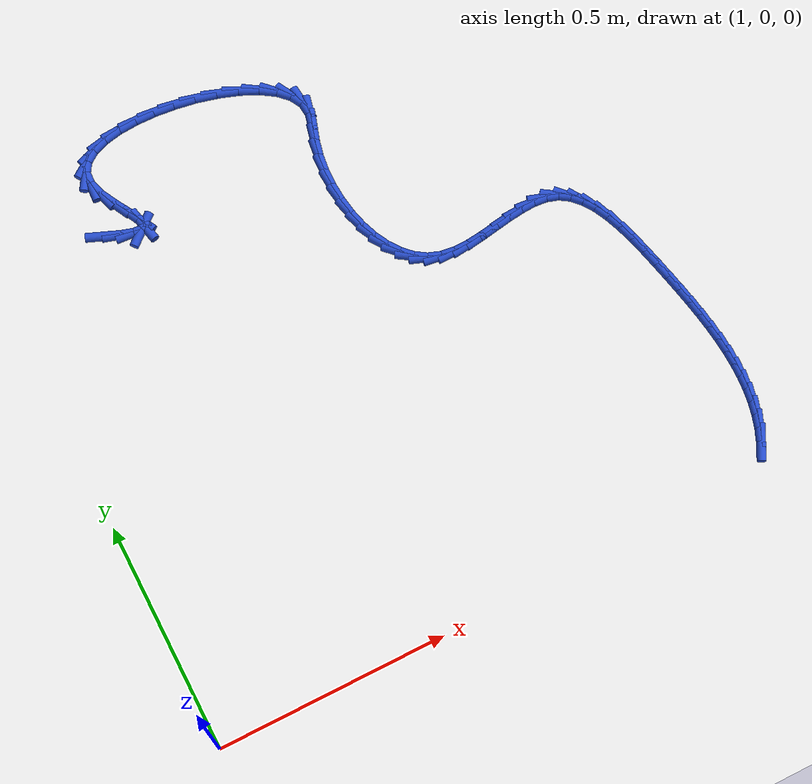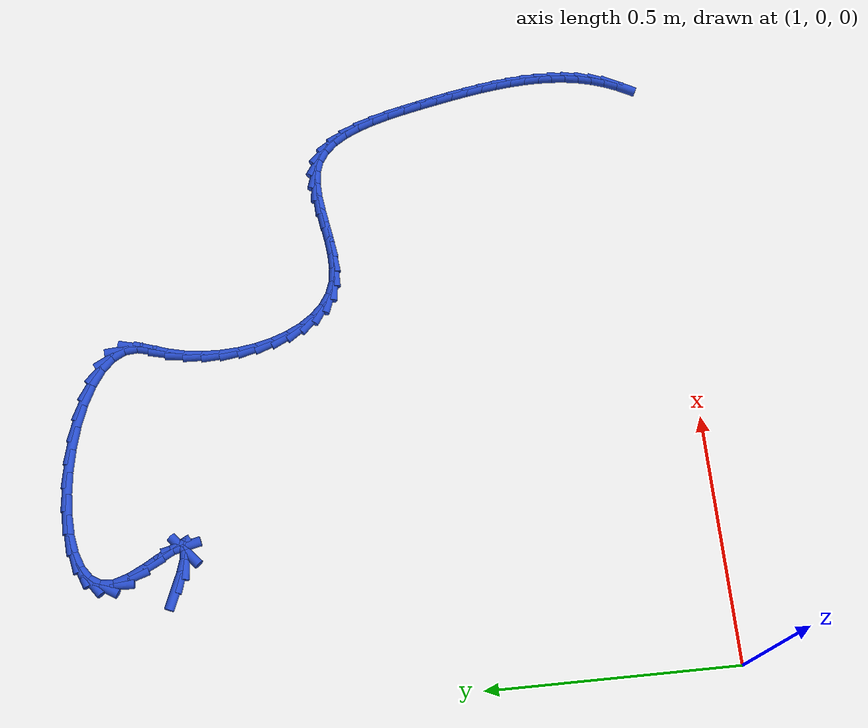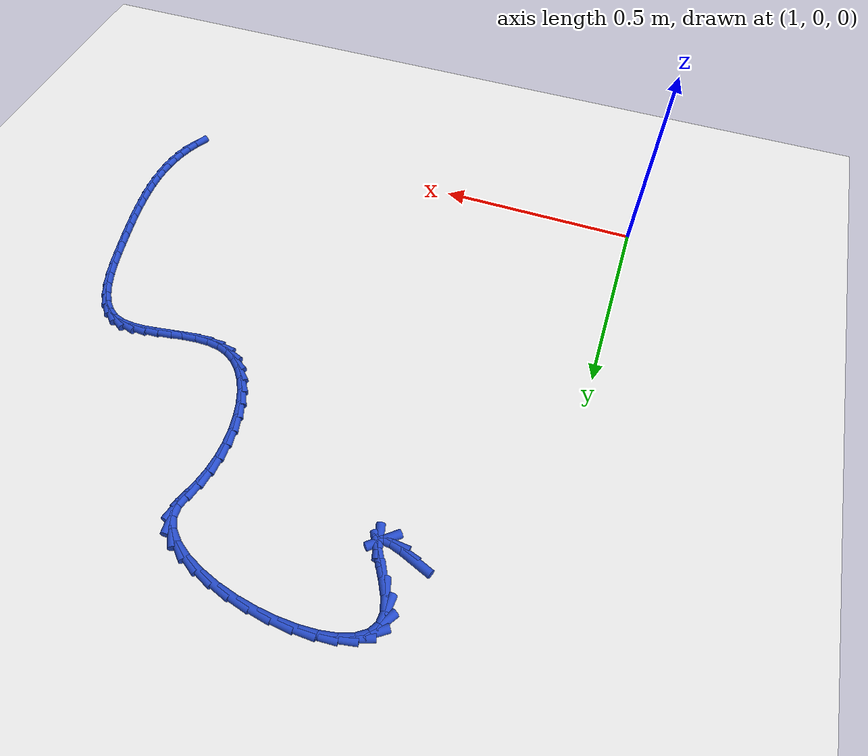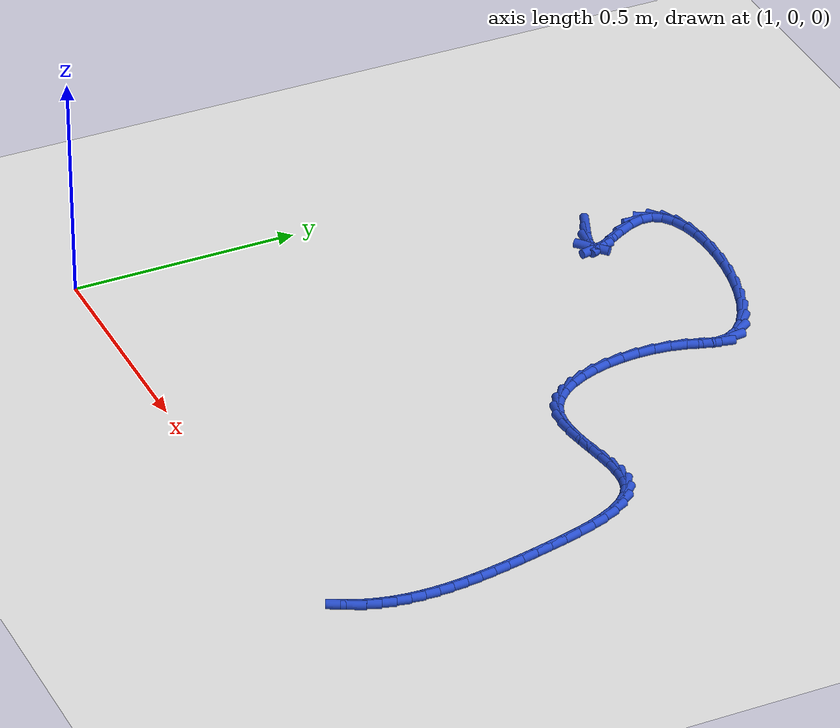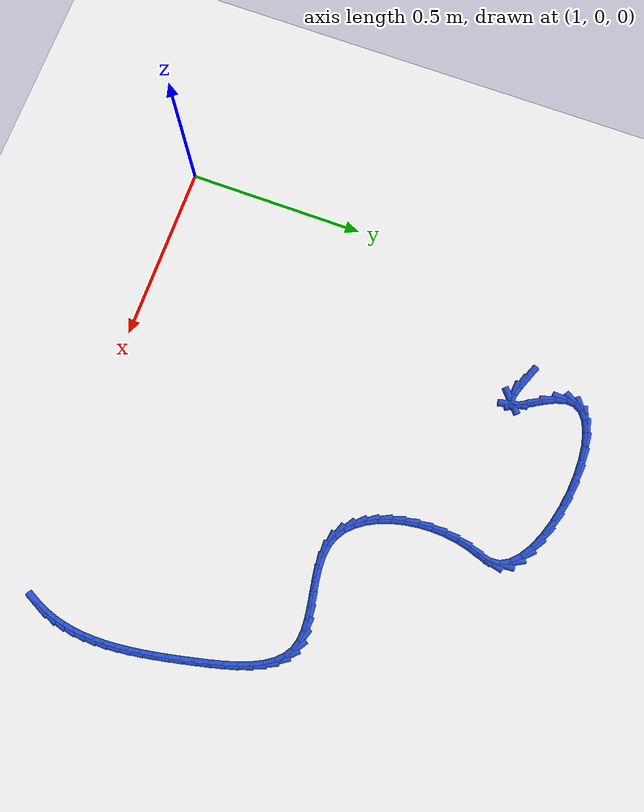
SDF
<sdf version="1.6">
 <world name="default">
  <model name="ground_plane">
   <static>1</static>
   <link name="link">
    <collision name="collision">
     <geometry><plane><normal>0 0 1</normal><size>100 100</size></plane></geometry>
     <surface><friction><ode><mu>100</mu><mu2>50</mu2></ode></friction></surface>
    </collision>
    <visual name="visual">
     <cast_shadows>0</cast_shadows>
     <geometry><plane><normal>0 0 1</normal><size>100 100</size></plane></geometry>
     <material>
      <script><uri>file://media/materials/scripts/gazebo.material</uri><name>Gazebo/WhiteGlow</name></script>
     </material>
    </visual>
   </link>
  </model>
  <model name="line">
   <link name="link_72">
    <pose>1.2478305650661614 1.0745295730575588 0.01 0 1.57 -0.37812944372000823</pose>
    <collision name="collision">
     <geometry><cylinder><radius>0.01</radius><length>0.08</length></cylinder></geometry>
    </collision>
    <visual name="visual">
     <material>
      <script><name>Gazebo/Blue</name><uri>file://media/materials/scripts/gazebo.material</uri></script>
     </material>
     <geometry><cylinder><radius>0.01</radius><length>0.08</length></cylinder></geometry>
    </visual>
   </link>
   <link name="link_73">
    <pose>1.2803647841303274 1.0616055051318056 0.01 0 1.57 -0.2929380937873325</pose>
    <collision name="collision">
     <geometry><cylinder><radius>0.01</radius><length>0.08</length></cylinder></geometry>
    </collision>
    <visual name="visual">
     <material>
      <script><name>Gazebo/Blue</name><uri>file://media/materials/scripts/gazebo.material</uri></script>
     </material>
     <geometry><cylinder><radius>0.01</radius><length>0.08</length></cylinder></geometry>
    </visual>
   </link>
   <link name="link_74">
    <pose>1.3062742661413442 1.0537908080284506 0.01 0 1.57 -0.06957884811726305</pose>
    <collision name="collision">
     <geometry><cylinder><radius>0.01</radius><length>0.08</length></cylinder></geometry>
    </collision>
    <visual name="visual">
     <material>
      <script><name>Gazebo/Blue</name><uri>file://media/materials/scripts/gazebo.material</uri></script>
     </material>
     <geometry><cylinder><radius>0.01</radius><length>0.08</length></cylinder></geometry>
    </visual>
   </link>
   <link name="link_75">
    <pose>1.323922116393836 1.0525609055540477 0.01 0 1.57 0.7224478031468782</pose>
    <collision name="collision">
     <geometry><cylinder><radius>0.01</radius><length>0.08</length></cylinder></geometry>
    </collision>
    <visual name="visual">
     <material>
      <script><name>Gazebo/Blue</name><uri>file://media/materials/scripts/gazebo.material</uri></script>
     </material>
     <geometry><cylinder><radius>0.01</radius><length>0.08</length></cylinder></geometry>
    </visual>
   </link>
   <link name="link_76">
    <pose>1.3316714401824277 1.0593912215151517 0.01 0 1.57 -1.3496120685410957</pose>
    <collision name="collision">
     <geometry><cylinder><radius>0.01</radius><length>0.08</length></cylinder></geometry>
    </collision>
    <visual name="visual">
     <material>
      <script><name>Gazebo/Blue</name><uri>file://media/materials/scripts/gazebo.material</uri></script>
     </material>
     <geometry><cylinder><radius>0.01</radius><length>0.08</length></cylinder></geometry>
    </visual>
   </link>
   <link name="link_77">
    <pose>1.3280105312774348 1.0756718242429102 0.01 0 1.57 -1.0800611763445116</pose>
    <collision name="collision">
     <geometry><cylinder><radius>0.01</radius><length>0.08</length></cylinder></geometry>
    </collision>
    <visual name="visual">
     <material>
      <script><name>Gazebo/Blue</name><uri>file://media/materials/scripts/gazebo.material</uri></script>
     </material>
     <geometry><cylinder><radius>0.01</radius><length>0.08</length></cylinder></geometry>
    </visual>
   </link>
   <link name="link_78">
    <pose>1.3147174181506907 1.100549789110419 0.01 0 1.57 -1.043010074607003</pose>
    <collision name="collision">
     <geometry><cylinder><radius>0.01</radius><length>0.08</length></cylinder></geometry>
    </collision>
    <visual name="visual">
     <material>
      <script><name>Gazebo/Blue</name><uri>file://media/materials/scripts/gazebo.material</uri></script>
     </material>
     <geometry><cylinder><radius>0.01</radius><length>0.08</length></cylinder></geometry>
    </visual>
   </link>
   <link name="link_79">
    <pose>1.2971054329115812 1.1307617657625344 0.01 0 1.57 -1.0982033194459906</pose>
    <collision name="collision">
     <geometry><cylinder><radius>0.01</radius><length>0.08</length></cylinder></geometry>
    </collision>
    <visual name="visual">
     <material>
      <script><name>Gazebo/Blue</name><uri>file://media/materials/scripts/gazebo.material</uri></script>
     </material>
     <geometry><cylinder><radius>0.01</radius><length>0.08</length></cylinder></geometry>
    </visual>
   </link>
   <link name="link_80">
    <pose>1.2806622897430027 1.1629255073985398 0.01 0 1.57 -1.262512435571746</pose>
    <collision name="collision">
     <geometry><cylinder><radius>0.01</radius><length>0.08</length></cylinder></geometry>
    </collision>
    <visual name="visual">
     <material>
      <script><name>Gazebo/Blue</name><uri>file://media/materials/scripts/gazebo.material</uri></script>
     </material>
     <geometry><cylinder><radius>0.01</radius><length>0.08</length></cylinder></geometry>
    </visual>
   </link>
   <link name="link_81">
    <pose>1.2708757028278495 1.1936587672177172 0.01 0 1.57 1.5128051599179193</pose>
    <collision name="collision">
     <geometry><cylinder><radius>0.01</radius><length>0.08</length></cylinder></geometry>
    </collision>
    <visual name="visual">
     <material>
      <script><name>Gazebo/Blue</name><uri>file://media/materials/scripts/gazebo.material</uri></script>
     </material>
     <geometry><cylinder><radius>0.01</radius><length>0.08</length></cylinder></geometry>
    </visual>
   </link>
   <link name="link_82">
    <pose>1.2724048519938926 1.2199978581546755 0.01 0 1.57 1.0283300394341726</pose>
    <collision name="collision">
     <geometry><cylinder><radius>0.01</radius><length>0.08</length></cylinder></geometry>
    </collision>
    <visual name="visual">
     <material>
      <script><name>Gazebo/Blue</name><uri>file://media/materials/scripts/gazebo.material</uri></script>
     </material>
     <geometry><cylinder><radius>0.01</radius><length>0.08</length></cylinder></geometry>
    </visual>
   </link>
   <link name="link_83">
    <pose>1.2852616609815208 1.2413267981798968 0.01 0 1.57 0.6317180641579971</pose>
    <collision name="collision">
     <geometry><cylinder><radius>0.01</radius><length>0.08</length></cylinder></geometry>
    </collision>
    <visual name="visual">
     <material>
      <script><name>Gazebo/Blue</name><uri>file://media/materials/scripts/gazebo.material</uri></script>
     </material>
     <geometry><cylinder><radius>0.01</radius><length>0.08</length></cylinder></geometry>
    </visual>
   </link>
   <link name="link_84">
    <pose>1.3078388116097375 1.2578476153630838 0.01 0 1.57 0.37035723255610814</pose>
    <collision name="collision">
     <geometry><cylinder><radius>0.01</radius><length>0.08</length></cylinder></geometry>
    </collision>
    <visual name="visual">
     <material>
      <script><name>Gazebo/Blue</name><uri>file://media/materials/scripts/gazebo.material</uri></script>
     </material>
     <geometry><cylinder><radius>0.01</radius><length>0.08</length></cylinder></geometry>
    </visual>
   </link>
   <link name="link_85">
    <pose>1.338527329039117 1.2697631746861422 0.01 0 1.57 0.19933346647590364</pose>
    <collision name="collision">
     <geometry><cylinder><radius>0.01</radius><length>0.08</length></cylinder></geometry>
    </collision>
    <visual name="visual">
     <material>
      <script><name>Gazebo/Blue</name><uri>file://media/materials/scripts/gazebo.material</uri></script>
     </material>
     <geometry><cylinder><radius>0.01</radius><length>0.08</length></cylinder></geometry>
    </visual>
   </link>
   <link name="link_86">
    <pose>1.3757182384302349 1.2772763411309775 0.01 0 1.57 0.07857595324308744</pose>
    <collision name="collision">
     <geometry><cylinder><radius>0.01</radius><length>0.08</length></cylinder></geometry>
    </collision>
    <visual name="visual">
     <material>
      <script><name>Gazebo/Blue</name><uri>file://media/materials/scripts/gazebo.material</uri></script>
     </material>
     <geometry><cylinder><radius>0.01</radius><length>0.08</length></cylinder></geometry>
    </visual>
   </link>
   <link name="link_87">
    <pose>1.4178025649436679 1.2805899796794966 0.01 0 1.57 -0.015053808781209092</pose>
    <collision name="collision">
     <geometry><cylinder><radius>0.01</radius><length>0.08</length></cylinder></geometry>
    </collision>
    <visual name="visual">
     <material>
      <script><name>Gazebo/Blue</name><uri>file://media/materials/scripts/gazebo.material</uri></script>
     </material>
     <geometry><cylinder><radius>0.01</radius><length>0.08</length></cylinder></geometry>
    </visual>
   </link>
   <link name="link_88">
    <pose>1.46317133373999 1.2799069553136047 0.01 0 1.57 -0.09487626695532826</pose>
    <collision name="collision">
     <geometry><cylinder><radius>0.01</radius><length>0.08</length></cylinder></geometry>
    </collision>
    <visual name="visual">
     <material>
      <script><name>Gazebo/Blue</name><uri>file://media/materials/scripts/gazebo.material</uri></script>
     </material>
     <geometry><cylinder><radius>0.01</radius><length>0.08</length></cylinder></geometry>
    </visual>
   </link>
   <link name="link_89">
    <pose>1.510215569979777 1.2754301330152082 0.01 0 1.57 -0.16960568076453664</pose>
    <collision name="collision">
     <geometry><cylinder><radius>0.01</radius><length>0.08</length></cylinder></geometry>
    </collision>
    <visual name="visual">
     <material>
      <script><name>Gazebo/Blue</name><uri>file://media/materials/scripts/gazebo.material</uri></script>
     </material>
     <geometry><cylinder><radius>0.01</radius><length>0.08</length></cylinder></geometry>
    </visual>
   </link>
   <link name="link_90">
    <pose>1.5573262988236043 1.2673623777662129 0.01 0 1.57 -0.24629517415803584</pose>
    <collision name="collision">
     <geometry><cylinder><radius>0.01</radius><length>0.08</length></cylinder></geometry>
    </collision>
    <visual name="visual">
     <material>
      <script><name>Gazebo/Blue</name><uri>file://media/materials/scripts/gazebo.material</uri></script>
     </material>
     <geometry><cylinder><radius>0.01</radius><length>0.08</length></cylinder></geometry>
    </visual>
   </link>
   <link name="link_91">
    <pose>1.6028945454320482 1.2559065545485242 0.01 0 1.57 -0.33236594444159884</pose>
    <collision name="collision">
     <geometry><cylinder><radius>0.01</radius><length>0.08</length></cylinder></geometry>
    </collision>
    <visual name="visual">
     <material>
      <script><name>Gazebo/Blue</name><uri>file://media/materials/scripts/gazebo.material</uri></script>
     </material>
     <geometry><cylinder><radius>0.01</radius><length>0.08</length></cylinder></geometry>
    </visual>
   </link>
   <link name="link_92">
    <pose>1.6453113349656823 1.241265528344049 0.01 0 1.57 -0.43772560461045495</pose>
    <collision name="collision">
     <geometry><cylinder><radius>0.01</radius><length>0.08</length></cylinder></geometry>
    </collision>
    <visual name="visual">
     <material>
      <script><name>Gazebo/Blue</name><uri>file://media/materials/scripts/gazebo.material</uri></script>
     </material>
     <geometry><cylinder><radius>0.01</radius><length>0.08</length></cylinder></geometry>
    </visual>
   </link>
   <link name="link_93">
    <pose>1.6829676925850825 1.2236421641346924 0.01 0 1.57 -0.5778639055378121</pose>
    <collision name="collision">
     <geometry><cylinder><radius>0.01</radius><length>0.08</length></cylinder></geometry>
    </collision>
    <visual name="visual">
     <material>
      <script><name>Gazebo/Blue</name><uri>file://media/materials/scripts/gazebo.material</uri></script>
     </material>
     <geometry><cylinder><radius>0.01</radius><length>0.08</length></cylinder></geometry>
    </visual>
   </link>
   <link name="link_94">
    <pose>1.7142546434508255 1.2032393269023614 0.01 0 1.57 -0.7782879328952622</pose>
    <collision name="collision">
     <geometry><cylinder><radius>0.01</radius><length>0.08</length></cylinder></geometry>
    </collision>
    <visual name="visual">
     <material>
      <script><name>Gazebo/Blue</name><uri>file://media/materials/scripts/gazebo.material</uri></script>
     </material>
     <geometry><cylinder><radius>0.01</radius><length>0.08</length></cylinder></geometry>
    </visual>
   </link>
   <link name="link_95">
    <pose>1.7375632127234857 1.1802598816289602 0.01 0 1.57 -1.0747323956902781</pose>
    <collision name="collision">
     <geometry><cylinder><radius>0.01</radius><length>0.08</length></cylinder></geometry>
    </collision>
    <visual name="visual">
     <material>
      <script><name>Gazebo/Blue</name><uri>file://media/materials/scripts/gazebo.material</uri></script>
     </material>
     <geometry><cylinder><radius>0.01</radius><length>0.08</length></cylinder></geometry>
    </visual>
   </link>
   <link name="link_96">
    <pose>1.7512844255636382 1.1549066932963963 0.01 0 1.57 -1.477620112990437</pose>
    <collision name="collision">
     <geometry><cylinder><radius>0.01</radius><length>0.08</length></cylinder></geometry>
    </collision>
    <visual name="visual">
     <material>
      <script><name>Gazebo/Blue</name><uri>file://media/materials/scripts/gazebo.material</uri></script>
     </material>
     <geometry><cylinder><radius>0.01</radius><length>0.08</length></cylinder></geometry>
    </visual>
   </link>
   <link name="link_97">
    <pose>1.753856666814134 1.1273804295298062 0.01 0 1.57 1.337148707363873</pose>
    <collision name="collision">
     <geometry><cylinder><radius>0.01</radius><length>0.08</length></cylinder></geometry>
    </collision>
    <visual name="visual">
     <material>
      <script><name>Gazebo/Blue</name><uri>file://media/materials/scripts/gazebo.material</uri></script>
     </material>
     <geometry><cylinder><radius>0.01</radius><length>0.08</length></cylinder></geometry>
    </visual>
   </link>
   <link name="link_98">
    <pose>1.7468021003389258 1.097738679234604 0.01 0 1.57 1.2605910597459384</pose>
    <collision name="collision">
     <geometry><cylinder><radius>0.01</radius><length>0.08</length></cylinder></geometry>
    </collision>
    <visual name="visual">
     <material>
      <script><name>Gazebo/Blue</name><uri>file://media/materials/scripts/gazebo.material</uri></script>
     </material>
     <geometry><cylinder><radius>0.01</radius><length>0.08</length></cylinder></geometry>
    </visual>
   </link>
   <link name="link_99">
    <pose>1.7365674163078704 1.0658105521818677 0.01 0 1.57 1.346394562430708</pose>
    <collision name="collision">
     <geometry><cylinder><radius>0.01</radius><length>0.08</length></cylinder></geometry>
    </collision>
    <visual name="visual">
     <material>
      <script><name>Gazebo/Blue</name><uri>file://media/materials/scripts/gazebo.material</uri></script>
     </material>
     <geometry><cylinder><radius>0.01</radius><length>0.08</length></cylinder></geometry>
    </visual>
   </link>
   <link name="link_100">
    <pose>1.7287553807042175 1.0315841490173723 0.01 0 1.57 1.4488682140867206</pose>
    <collision name="collision">
     <geometry><cylinder><radius>0.01</radius><length>0.08</length></cylinder></geometry>
    </collision>
    <visual name="visual">
     <material>
      <script><name>Gazebo/Blue</name><uri>file://media/materials/scripts/gazebo.material</uri></script>
     </material>
     <geometry><cylinder><radius>0.01</radius><length>0.08</length></cylinder></geometry>
    </visual>
   </link>
   <link name="link_101">
    <pose>1.7243572549149024 0.9956916120126073 0.01 0 1.57 1.5428795222623892</pose>
    <collision name="collision">
     <geometry><cylinder><radius>0.01</radius><length>0.08</length></cylinder></geometry>
    </collision>
    <visual name="visual">
     <material>
      <script><name>Gazebo/Blue</name><uri>file://media/materials/scripts/gazebo.material</uri></script>
     </material>
     <geometry><cylinder><radius>0.01</radius><length>0.08</length></cylinder></geometry>
    </visual>
   </link>
   <link name="link_102">
    <pose>1.723330149400294 0.9589095127093924 0.01 0 1.57 -1.5085102936279629</pose>
    <collision name="collision">
     <geometry><cylinder><radius>0.01</radius><length>0.08</length></cylinder></geometry>
    </collision>
    <visual name="visual">
     <material>
      <script><name>Gazebo/Blue</name><uri>file://media/materials/scripts/gazebo.material</uri></script>
     </material>
     <geometry><cylinder><radius>0.01</radius><length>0.08</length></cylinder></geometry>
    </visual>
   </link>
   <link name="link_103">
    <pose>1.7256311746207635 0.9220144226495491 0.01 0 1.57 -1.4178183988220703</pose>
    <collision name="collision">
     <geometry><cylinder><radius>0.01</radius><length>0.08</length></cylinder></geometry>
    </collision>
    <visual name="visual">
     <material>
      <script><name>Gazebo/Blue</name><uri>file://media/materials/scripts/gazebo.material</uri></script>
     </material>
     <geometry><cylinder><radius>0.01</radius><length>0.08</length></cylinder></geometry>
    </visual>
   </link>
   <link name="link_104">
    <pose>1.7312174410366807 0.8857829133748966 0.01 0 1.57 -1.322282973082021</pose>
    <collision name="collision">
     <geometry><cylinder><radius>0.01</radius><length>0.08</length></cylinder></geometry>
    </collision>
    <visual name="visual">
     <material>
      <script><name>Gazebo/Blue</name><uri>file://media/materials/scripts/gazebo.material</uri></script>
     </material>
     <geometry><cylinder><radius>0.01</radius><length>0.08</length></cylinder></geometry>
    </visual>
   </link>
   <link name="link_105">
    <pose>1.7400460591084168 0.8509915564272569 0.01 0 1.57 -1.2170790419069604</pose>
    <collision name="collision">
     <geometry><cylinder><radius>0.01</radius><length>0.08</length></cylinder></geometry>
    </collision>
    <visual name="visual">
     <material>
      <script><name>Gazebo/Blue</name><uri>file://media/materials/scripts/gazebo.material</uri></script>
     </material>
     <geometry><cylinder><radius>0.01</radius><length>0.08</length></cylinder></geometry>
    </visual>
   </link>
   <link name="link_106">
    <pose>1.7520741392963413 0.81841692334845 0.01 0 1.57 -1.0965506454835985</pose>
    <collision name="collision">
     <geometry><cylinder><radius>0.01</radius><length>0.08</length></cylinder></geometry>
    </collision>
    <visual name="visual">
     <material>
      <script><name>Gazebo/Blue</name><uri>file://media/materials/scripts/gazebo.material</uri></script>
     </material>
     <geometry><cylinder><radius>0.01</radius><length>0.08</length></cylinder></geometry>
    </visual>
   </link>
   <link name="link_107">
    <pose>1.7672587920608254 0.7888355856802967 0.01 0 1.57 -0.9541070856824572</pose>
    <collision name="collision">
     <geometry><cylinder><radius>0.01</radius><length>0.08</length></cylinder></geometry>
    </collision>
    <visual name="visual">
     <material>
      <script><name>Gazebo/Blue</name><uri>file://media/materials/scripts/gazebo.material</uri></script>
     </material>
     <geometry><cylinder><radius>0.01</radius><length>0.08</length></cylinder></geometry>
    </visual>
   </link>
   <link name="link_108">
    <pose>1.7855571278622384 0.763024114964617 0.01 0 1.57 -0.7829565328655871</pose>
    <collision name="collision">
     <geometry><cylinder><radius>0.01</radius><length>0.08</length></cylinder></geometry>
    </collision>
    <visual name="visual">
     <material>
      <script><name>Gazebo/Blue</name><uri>file://media/materials/scripts/gazebo.material</uri></script>
     </material>
     <geometry><cylinder><radius>0.01</radius><length>0.08</length></cylinder></geometry>
    </visual>
   </link>
   <link name="link_109">
    <pose>1.8069262571609521 0.7417590827432314 0.01 0 1.57 -0.5787904099143435</pose>
    <collision name="collision">
     <geometry><cylinder><radius>0.01</radius><length>0.08</length></cylinder></geometry>
    </collision>
    <visual name="visual">
     <material>
      <script><name>Gazebo/Blue</name><uri>file://media/materials/scripts/gazebo.material</uri></script>
     </material>
     <geometry><cylinder><radius>0.01</radius><length>0.08</length></cylinder></geometry>
    </visual>
   </link>
   <link name="link_110">
    <pose>1.8313232904173353 0.7258170605579615 0.01 0 1.57 -0.345727028559131</pose>
    <collision name="collision">
     <geometry><cylinder><radius>0.01</radius><length>0.08</length></cylinder></geometry>
    </collision>
    <visual name="visual">
     <material>
      <script><name>Gazebo/Blue</name><uri>file://media/materials/scripts/gazebo.material</uri></script>
     </material>
     <geometry><cylinder><radius>0.01</radius><length>0.08</length></cylinder></geometry>
    </visual>
   </link>
   <link name="link_111">
    <pose>1.8586997970088208 0.7159562159144177 0.01 0 1.57 -0.12910799916274707</pose>
    <collision name="collision">
     <geometry><cylinder><radius>0.01</radius><length>0.08</length></cylinder></geometry>
    </collision>
    <visual name="visual">
     <material>
      <script><name>Gazebo/Blue</name><uri>file://media/materials/scripts/gazebo.material</uri></script>
     </material>
     <geometry><cylinder><radius>0.01</radius><length>0.08</length></cylinder></geometry>
    </visual>
   </link>
   <link name="link_112">
    <pose>1.8887427043151102 0.7120557399587494 0.01 0 1.57 0.021622337586417427</pose>
    <collision name="collision">
     <geometry><cylinder><radius>0.01</radius><length>0.08</length></cylinder></geometry>
    </collision>
    <visual name="visual">
     <material>
      <script><name>Gazebo/Blue</name><uri>file://media/materials/scripts/gazebo.material</uri></script>
     </material>
     <geometry><cylinder><radius>0.01</radius><length>0.08</length></cylinder></geometry>
    </visual>
   </link>
   <link name="link_113">
    <pose>1.9207636109365127 0.7127482147314383 0.01 0 1.57 0.11437318859692377</pose>
    <collision name="collision">
     <geometry><cylinder><radius>0.01</radius><length>0.08</length></cylinder></geometry>
    </collision>
    <visual name="visual">
     <material>
      <script><name>Gazebo/Blue</name><uri>file://media/materials/scripts/gazebo.material</uri></script>
     </material>
     <geometry><cylinder><radius>0.01</radius><length>0.08</length></cylinder></geometry>
    </visual>
   </link>
   <link name="link_114">
    <pose>1.9540455862356183 0.7165714658634726 0.01 0 1.57 0.1609510490947272</pose>
    <collision name="collision">
     <geometry><cylinder><radius>0.01</radius><length>0.08</length></cylinder></geometry>
    </collision>
    <visual name="visual">
     <material>
      <script><name>Gazebo/Blue</name><uri>file://media/materials/scripts/gazebo.material</uri></script>
     </material>
     <geometry><cylinder><radius>0.01</radius><length>0.08</length></cylinder></geometry>
    </visual>
   </link>
   <link name="link_115">
    <pose>1.9878716995750219 0.7220633189858409 0.01 0 1.57 0.16773208538750367</pose>
    <collision name="collision">
     <geometry><cylinder><radius>0.01</radius><length>0.08</length></cylinder></geometry>
    </collision>
    <visual name="visual">
     <material>
      <script><name>Gazebo/Blue</name><uri>file://media/materials/scripts/gazebo.material</uri></script>
     </material>
     <geometry><cylinder><radius>0.01</radius><length>0.08</length></cylinder></geometry>
    </visual>
   </link>
   <link name="link_116">
    <pose>2.0215250203173136 0.7277615997295315 0.01 0 1.57 0.13477165311768877</pose>
    <collision name="collision">
     <geometry><cylinder><radius>0.01</radius><length>0.08</length></cylinder></geometry>
    </collision>
    <visual name="visual">
     <material>
      <script><name>Gazebo/Blue</name><uri>file://media/materials/scripts/gazebo.material</uri></script>
     </material>
     <geometry><cylinder><radius>0.01</radius><length>0.08</length></cylinder></geometry>
    </visual>
   </link>
   <link name="link_117">
    <pose>2.054288617825088 0.7322041337255325 0.01 0 1.57 0.05529601322150653</pose>
    <collision name="collision">
     <geometry><cylinder><radius>0.01</radius><length>0.08</length></cylinder></geometry>
    </collision>
    <visual name="visual">
     <material>
      <script><name>Gazebo/Blue</name><uri>file://media/materials/scripts/gazebo.material</uri></script>
     </material>
     <geometry><cylinder><radius>0.01</radius><length>0.08</length></cylinder></geometry>
    </visual>
   </link>
   <link name="link_118">
    <pose>2.085445561460935 0.7339287466048329 0.01 0 1.57 -0.08495618652632844</pose>
    <collision name="collision">
     <geometry><cylinder><radius>0.01</radius><length>0.08</length></cylinder></geometry>
    </collision>
    <visual name="visual">
     <material>
      <script><name>Gazebo/Blue</name><uri>file://media/materials/scripts/gazebo.material</uri></script>
     </material>
     <geometry><cylinder><radius>0.01</radius><length>0.08</length></cylinder></geometry>
    </visual>
   </link>
   <link name="link_119">
    <pose>2.1142789205874477 0.7314732639984203 0.01 0 1.57 -0.30401065619891227</pose>
    <collision name="collision">
     <geometry><cylinder><radius>0.01</radius><length>0.08</length></cylinder></geometry>
    </collision>
    <visual name="visual">
     <material>
      <script><name>Gazebo/Blue</name><uri>file://media/materials/scripts/gazebo.material</uri></script>
     </material>
     <geometry><cylinder><radius>0.01</radius><length>0.08</length></cylinder></geometry>
    </visual>
   </link>
   <link name="link_120">
    <pose>2.1400740532811686 0.7233803980312432 0.01 0 1.57 -0.574286686413228</pose>
    <collision name="collision">
     <geometry><cylinder><radius>0.01</radius><length>0.08</length></cylinder></geometry>
    </collision>
    <visual name="visual">
     <material>
      <script><name>Gazebo/Blue</name><uri>file://media/materials/scripts/gazebo.material</uri></script>
     </material>
     <geometry><cylinder><radius>0.01</radius><length>0.08</length></cylinder></geometry>
    </visual>
   </link>
   <link name="link_121">
    <pose>2.1624489699913427 0.7089030866781485 0.01 0 1.57 -0.8084631526344804</pose>
    <collision name="collision">
     <geometry><cylinder><radius>0.01</radius><length>0.08</length></cylinder></geometry>
    </collision>
    <visual name="visual">
     <material>
      <script><name>Gazebo/Blue</name><uri>file://media/materials/scripts/gazebo.material</uri></script>
     </material>
     <geometry><cylinder><radius>0.01</radius><length>0.08</length></cylinder></geometry>
    </visual>
   </link>
   <link name="link_122">
    <pose>2.1817001163904606 0.6887427536984377 0.01 0 1.57 -0.9866063265163652</pose>
    <collision name="collision">
     <geometry><cylinder><radius>0.01</radius><length>0.08</length></cylinder></geometry>
    </collision>
    <visual name="visual">
     <material>
      <script><name>Gazebo/Blue</name><uri>file://media/materials/scripts/gazebo.material</uri></script>
     </material>
     <geometry><cylinder><radius>0.01</radius><length>0.08</length></cylinder></geometry>
    </visual>
   </link>
   <link name="link_123">
    <pose>2.198206602887741 0.6637773153033563 0.01 0 1.57 -1.115639907061712</pose>
    <collision name="collision">
     <geometry><cylinder><radius>0.01</radius><length>0.08</length></cylinder></geometry>
    </collision>
    <visual name="visual">
     <material>
      <script><name>Gazebo/Blue</name><uri>file://media/materials/scripts/gazebo.material</uri></script>
     </material>
     <geometry><cylinder><radius>0.01</radius><length>0.08</length></cylinder></geometry>
    </visual>
   </link>
   <link name="link_124">
    <pose>2.212347539892409 0.6348846877041495 0.01 0 1.57 -1.2071959410643356</pose>
    <collision name="collision">
     <geometry><cylinder><radius>0.01</radius><length>0.08</length></cylinder></geometry>
    </collision>
    <visual name="visual">
     <material>
      <script><name>Gazebo/Blue</name><uri>file://media/materials/scripts/gazebo.material</uri></script>
     </material>
     <geometry><cylinder><radius>0.01</radius><length>0.08</length></cylinder></geometry>
    </visual>
   </link>
   <link name="link_125">
    <pose>2.2245020378136844 0.6029427871120622 0.01 0 1.57 -1.2709380719774603</pose>
    <collision name="collision">
     <geometry><cylinder><radius>0.01</radius><length>0.08</length></cylinder></geometry>
    </collision>
    <visual name="visual">
     <material>
      <script><name>Gazebo/Blue</name><uri>file://media/materials/scripts/gazebo.material</uri></script>
     </material>
     <geometry><cylinder><radius>0.01</radius><length>0.08</length></cylinder></geometry>
    </visual>
   </link>
   <link name="link_126">
    <pose>2.2350492070607904 0.5688295297383388 0.01 0 1.57 -1.3134356618349954</pose>
    <collision name="collision">
     <geometry><cylinder><radius>0.01</radius><length>0.08</length></cylinder></geometry>
    </collision>
    <visual name="visual">
     <material>
      <script><name>Gazebo/Blue</name><uri>file://media/materials/scripts/gazebo.material</uri></script>
     </material>
     <geometry><cylinder><radius>0.01</radius><length>0.08</length></cylinder></geometry>
    </visual>
   </link>
   <link name="link_127">
    <pose>2.244368158042949 0.5334228317942257 0.01 0 1.57 -1.338619191695977</pose>
    <collision name="collision">
     <geometry><cylinder><radius>0.01</radius><length>0.08</length></cylinder></geometry>
    </collision>
    <visual name="visual">
     <material>
      <script><name>Gazebo/Blue</name><uri>file://media/materials/scripts/gazebo.material</uri></script>
     </material>
     <geometry><cylinder><radius>0.01</radius><length>0.08</length></cylinder></geometry>
    </visual>
   </link>
   <link name="link_128">
    <pose>2.252838001169382 0.497600609490967 0.01 0 1.57 -1.3500969745099574</pose>
    <collision name="collision">
     <geometry><cylinder><radius>0.01</radius><length>0.08</length></cylinder></geometry>
    </collision>
    <visual name="visual">
     <material>
      <script><name>Gazebo/Blue</name><uri>file://media/materials/scripts/gazebo.material</uri></script>
     </material>
     <geometry><cylinder><radius>0.01</radius><length>0.08</length></cylinder></geometry>
    </visual>
   </link>
   <link name="link_129">
    <pose>2.2607889424398357 0.4621613206003449 0.01 0 1.57 -1.3607751632634766</pose>
    <collision name="collision">
     <geometry><cylinder><radius>0.01</radius><length>0.08</length></cylinder></geometry>
    </collision>
    <visual name="visual">
     <material>
      <script><name>Gazebo/Blue</name><uri>file://media/materials/scripts/gazebo.material</uri></script>
     </material>
     <geometry><cylinder><radius>0.01</radius><length>0.08</length></cylinder></geometry>
    </visual>
   </link>
   <link name="link_130">
    <pose>2.268209762800965 0.42734868555648214 0.01 0 1.57 -1.3762662523467546</pose>
    <collision name="collision">
     <geometry><cylinder><radius>0.01</radius><length>0.08</length></cylinder></geometry>
    </collision>
    <visual name="visual">
     <material>
      <script><name>Gazebo/Blue</name><uri>file://media/materials/scripts/gazebo.material</uri></script>
     </material>
     <geometry><cylinder><radius>0.01</radius><length>0.08</length></cylinder></geometry>
    </visual>
   </link>
   <link name="link_131">
    <pose>2.2749437088326667 0.39316996485471045 0.01 0 1.57 -1.3969560912774401</pose>
    <collision name="collision">
     <geometry><cylinder><radius>0.01</radius><length>0.08</length></cylinder></geometry>
    </collision>
    <visual name="visual">
     <material>
      <script><name>Gazebo/Blue</name><uri>file://media/materials/scripts/gazebo.material</uri></script>
     </material>
     <geometry><cylinder><radius>0.01</radius><length>0.08</length></cylinder></geometry>
    </visual>
   </link>
   <link name="link_132">
    <pose>2.2808334867454487 0.3596315410141578 0.01 0 1.57 -1.4232579226198594</pose>
    <collision name="collision">
     <geometry><cylinder><radius>0.01</radius><length>0.08</length></cylinder></geometry>
    </collision>
    <visual name="visual">
     <material>
      <script><name>Gazebo/Blue</name><uri>file://media/materials/scripts/gazebo.material</uri></script>
     </material>
     <geometry><cylinder><radius>0.01</radius><length>0.08</length></cylinder></geometry>
    </visual>
   </link>
   <link name="link_133">
    <pose>2.285721802749825 0.3267397965539514 0.01 0 1.57 -1.4556224268930167</pose>
    <collision name="collision">
     <geometry><cylinder><radius>0.01</radius><length>0.08</length></cylinder></geometry>
    </collision>
    <visual name="visual">
     <material>
      <script><name>Gazebo/Blue</name><uri>file://media/materials/scripts/gazebo.material</uri></script>
     </material>
     <geometry><cylinder><radius>0.01</radius><length>0.08</length></cylinder></geometry>
    </visual>
   </link>
   <link name="link_134">
    <pose>2.289451363056306 0.29450111399321816 0.01 0 1.57 -1.494517474947621</pose>
    <collision name="collision">
     <geometry><cylinder><radius>0.01</radius><length>0.08</length></cylinder></geometry>
    </collision>
    <visual name="visual">
     <material>
      <script><name>Gazebo/Blue</name><uri>file://media/materials/scripts/gazebo.material</uri></script>
     </material>
     <geometry><cylinder><radius>0.01</radius><length>0.08</length></cylinder></geometry>
    </visual>
   </link>
   <link name="link_135">
    <pose>2.2918648738754044 0.26292187585108506 0.01 0 1.57 -1.5403927641299755</pose>
    <collision name="collision">
     <geometry><cylinder><radius>0.01</radius><length>0.08</length></cylinder></geometry>
    </collision>
    <visual name="visual">
     <material>
      <script><name>Gazebo/Blue</name><uri>file://media/materials/scripts/gazebo.material</uri></script>
     </material>
     <geometry><cylinder><radius>0.01</radius><length>0.08</length></cylinder></geometry>
    </visual>
   </link>
   <link name="link_136">
    <pose>2.29280504141763 0.2320084646466804 0.01 0 1.57 1.5479682134832893</pose>
    <collision name="collision">
     <geometry><cylinder><radius>0.01</radius><length>0.08</length></cylinder></geometry>
    </collision>
    <visual name="visual">
     <material>
      <script><name>Gazebo/Blue</name><uri>file://media/materials/scripts/gazebo.material</uri></script>
     </material>
     <geometry><cylinder><radius>0.01</radius><length>0.08</length></cylinder></geometry>
    </visual>
   </link>
   <link name="link_137">
    <pose>2.2921145718934968 0.20176726289913105 0.01 0 1.57 1.4871562708595063</pose>
    <collision name="collision">
     <geometry><cylinder><radius>0.01</radius><length>0.08</length></cylinder></geometry>
    </collision>
    <visual name="visual">
     <material>
      <script><name>Gazebo/Blue</name><uri>file://media/materials/scripts/gazebo.material</uri></script>
     </material>
     <geometry><cylinder><radius>0.01</radius><length>0.08</length></cylinder></geometry>
    </visual>
   </link>
   <link name="link_138">
    <pose>2.2896361715135143 0.17220465312756414 0.01 0 1.57 1.4187927784546053</pose>
    <collision name="collision">
     <geometry><cylinder><radius>0.01</radius><length>0.08</length></cylinder></geometry>
    </collision>
    <visual name="visual">
     <material>
      <script><name>Gazebo/Blue</name><uri>file://media/materials/scripts/gazebo.material</uri></script>
     </material>
     <geometry><cylinder><radius>0.01</radius><length>0.08</length></cylinder></geometry>
    </visual>
   </link>
   <link name="link_139">
    <pose>2.2852125464881956 0.14332701785110705 0.01 0 1.57 1.3432694214592644</pose>
    <collision name="collision">
     <geometry><cylinder><radius>0.01</radius><length>0.08</length></cylinder></geometry>
    </collision>
    <visual name="visual">
     <material>
      <script><name>Gazebo/Blue</name><uri>file://media/materials/scripts/gazebo.material</uri></script>
     </material>
     <geometry><cylinder><radius>0.01</radius><length>0.08</length></cylinder></geometry>
    </visual>
   </link>
   <link name="link_140">
    <pose>2.2786864030280523 0.11514073958888665 0.01 0 1.57 1.2614358473717344</pose>
    <collision name="collision">
     <geometry><cylinder><radius>0.01</radius><length>0.08</length></cylinder></geometry>
    </collision>
    <visual name="visual">
     <material>
      <script><name>Gazebo/Blue</name><uri>file://media/materials/scripts/gazebo.material</uri></script>
     </material>
     <geometry><cylinder><radius>0.01</radius><length>0.08</length></cylinder></geometry>
    </visual>
   </link>
   <link name="link_141">
    <pose>2.269900447343595 0.08765220086003114 0.01 0 1.57 1.175031114793286</pose>
    <collision name="collision">
     <geometry><cylinder><radius>0.01</radius><length>0.08</length></cylinder></geometry>
    </collision>
    <visual name="visual">
     <material>
      <script><name>Gazebo/Blue</name><uri>file://media/materials/scripts/gazebo.material</uri></script>
     </material>
     <geometry><cylinder><radius>0.01</radius><length>0.08</length></cylinder></geometry>
    </visual>
   </link>
   <link name="link_142">
    <pose>2.258708612329785 0.060865321673208385 0.01 0 1.57 1.0933028198843762</pose>
    <collision name="collision">
     <geometry><cylinder><radius>0.01</radius><length>0.08</length></cylinder></geometry>
    </collision>
    <visual name="visual">
     <material>
      <script><name>Gazebo/Blue</name><uri>file://media/materials/scripts/gazebo.material</uri></script>
     </material>
     <geometry><cylinder><radius>0.01</radius><length>0.08</length></cylinder></geometry>
    </visual>
   </link>
  </model>
 </world>
</sdf>
